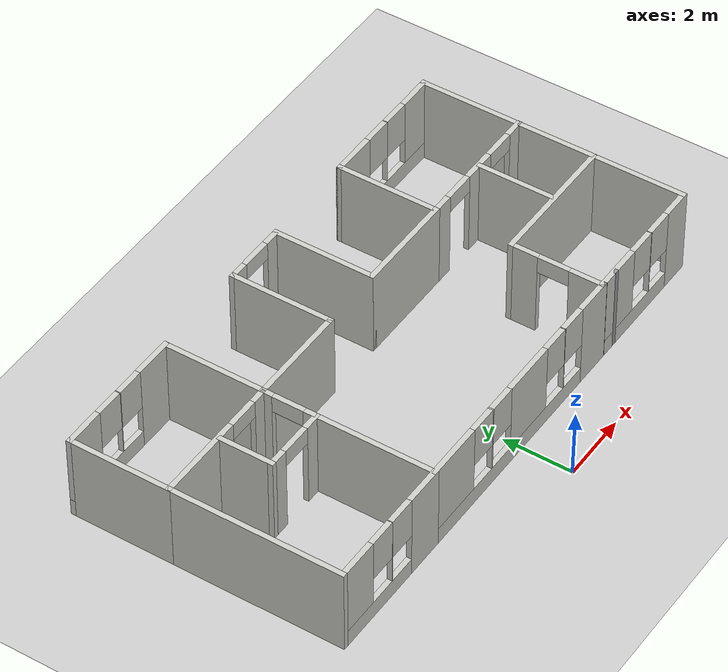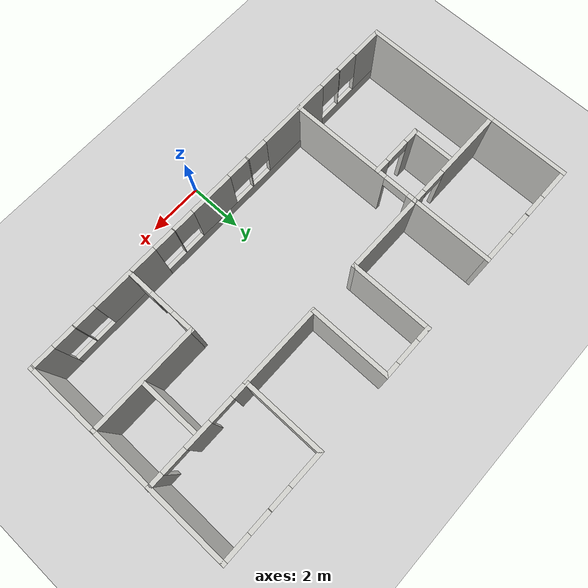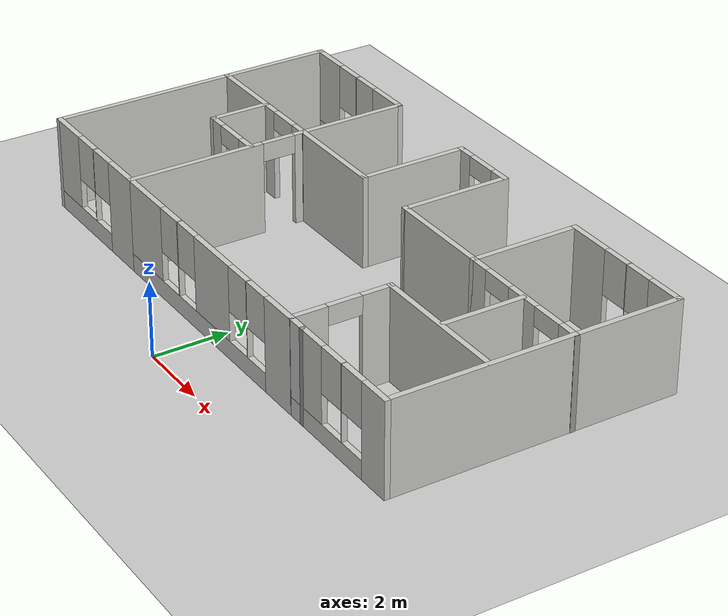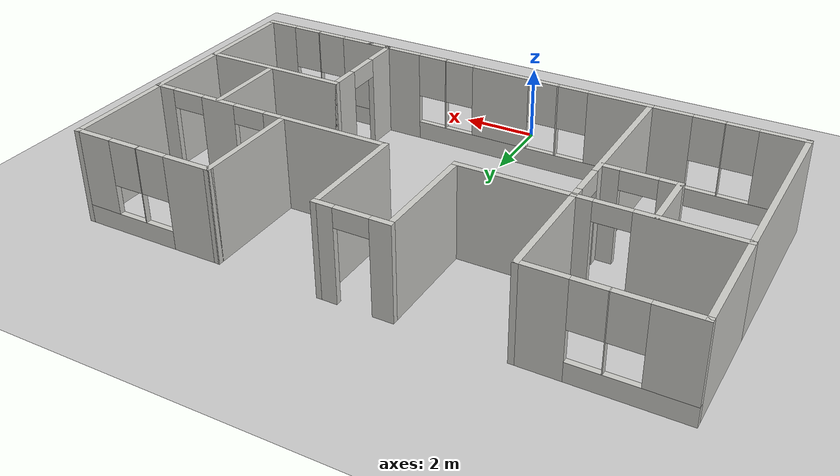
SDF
<sdf version="1.6">
 <world name="default">
  <model name="ground_plane">
   <static>1</static>
   <link name="link">
    <collision name="collision">
     <geometry><plane><normal>0 0 1</normal><size>100 100</size></plane></geometry>
     <surface>
      <contact><collide_bitmask>65535</collide_bitmask></contact>
      <friction><ode><mu>100</mu><mu2>50</mu2></ode></friction>
     </surface>
    </collision>
    <visual name="visual">
     <cast_shadows>0</cast_shadows>
     <geometry><plane><normal>0 0 1</normal><size>100 100</size></plane></geometry>
     <material>
      <script><uri>file://media/materials/scripts/gazebo.material</uri><name>Gazebo/Grey</name></script>
     </material>
    </visual>
   </link>
  </model>
  <model name="MyOffice">
   <pose>-0.034703 5.38022 0 0 -0 0</pose>
   <link name="Wall_0">
    <pose>-0.005 3.85 0 0 -0 3.14159</pose>
    <visual name="Wall_0_Visual_0">
     <pose>-0.723973 0 1.25 0 -0 0</pose>
     <geometry><box><size>0.552053 0.15 2.5</size></box></geometry>
     <material>
      <script><uri>file://media/materials/scripts/gazebo.material</uri><name>Gazebo/CeilingTiled</name></script>
      <ambient>1 1 1 1</ambient>
     </material>
     <meta><layer>0</layer></meta>
    </visual>
    <collision name="Wall_0_Collision_0">
     <geometry><box><size>0.552053 0.15 2.5</size></box></geometry>
     <pose>-0.723973 0 1.25 0 -0 0</pose>
    </collision>
    <visual name="Wall_0_Visual_1">
     <pose>0.726027 0 1.25 0 -0 0</pose>
     <geometry><box><size>0.547947 0.15 2.5</size></box></geometry>
     <material>
      <script><uri>file://media/materials/scripts/gazebo.material</uri><name>Gazebo/CeilingTiled</name></script>
      <ambient>1 1 1 1</ambient>
     </material>
     <meta><layer>0</layer></meta>
    </visual>
    <collision name="Wall_0_Collision_1">
     <geometry><box><size>0.547947 0.15 2.5</size></box></geometry>
     <pose>0.726027 0 1.25 0 -0 0</pose>
    </collision>
    <visual name="Wall_0_Visual_2">
     <pose>0.002053 0 2.25 0 -0 0</pose>
     <geometry><box><size>0.9 0.15 0.5</size></box></geometry>
     <material>
      <script><uri>file://media/materials/scripts/gazebo.material</uri><name>Gazebo/CeilingTiled</name></script>
      <ambient>1 1 1 1</ambient>
     </material>
     <meta><layer>0</layer></meta>
    </visual>
    <collision name="Wall_0_Collision_2">
     <geometry><box><size>0.9 0.15 0.5</size></box></geometry>
     <pose>0.002053 0 2.25 0 -0 0</pose>
    </collision>
   </link>
   <link name="Wall_1">
    <collision name="Wall_1_Collision">
     <geometry><box><size>3 0.15 2.5</size></box></geometry>
     <pose>0 0 1.25 0 -0 0</pose>
    </collision>
    <visual name="Wall_1_Visual">
     <pose>0 0 1.25 0 -0 0</pose>
     <geometry><box><size>3 0.15 2.5</size></box></geometry>
     <material>
      <script><uri>file://media/materials/scripts/gazebo.material</uri><name>Gazebo/CeilingTiled</name></script>
      <ambient>1 1 1 1</ambient>
     </material>
     <meta><layer>0</layer></meta>
    </visual>
    <pose>-0.93 2.425 0 0 0 -1.5708</pose>
   </link>
   <link name="Wall_10">
    <collision name="Wall_10_Collision">
     <geometry><box><size>0.16 0.15 2.5</size></box></geometry>
     <pose>0 0 1.25 0 -0 0</pose>
    </collision>
    <visual name="Wall_10_Visual">
     <pose>0 0 1.25 0 -0 0</pose>
     <geometry><box><size>0.16 0.15 2.5</size></box></geometry>
     <material>
      <script><uri>file://media/materials/scripts/gazebo.material</uri><name>Gazebo/Grey</name></script>
      <ambient>1 1 1 1</ambient>
     </material>
     <meta><layer>0</layer></meta>
    </visual>
    <pose>3.775 -3.85 0 0 -0 0</pose>
   </link>
   <link name="Wall_14">
    <collision name="Wall_14_Collision">
     <geometry><box><size>5 0.15 2.5</size></box></geometry>
     <pose>0 0 1.25 0 -0 0</pose>
    </collision>
    <visual name="Wall_14_Visual">
     <pose>0 0 1.25 0 -0 0</pose>
     <geometry><box><size>5 0.15 2.5</size></box></geometry>
     <material>
      <script><uri>file://media/materials/scripts/gazebo.material</uri><name>Gazebo/CeilingTiled</name></script>
      <ambient>1 1 1 1</ambient>
     </material>
     <meta><layer>0</layer></meta>
    </visual>
    <pose>7.62 -1.425 0 0 0 -1.5708</pose>
   </link>
   <link name="Wall_15">
    <pose>5.695 -3.85 0 0 -0 3.14159</pose>
    <visual name="Wall_15_Visual_0">
     <pose>-1.54591 0 1.25 0 -0 0</pose>
     <geometry><box><size>0.908188 0.15 2.5</size></box></geometry>
     <material>
      <script><uri>file://media/materials/scripts/gazebo.material</uri><name>Gazebo/CeilingTiled</name></script>
      <ambient>1 1 1 1</ambient>
     </material>
     <meta><layer>0</layer></meta>
    </visual>
    <collision name="Wall_15_Collision_0">
     <geometry><box><size>0.908188 0.15 2.5</size></box></geometry>
     <pose>-1.54591 0 1.25 0 -0 0</pose>
    </collision>
    <visual name="Wall_15_Visual_1">
     <pose>0.454094 0 0.25 0 -0 0</pose>
     <geometry><box><size>3.09181 0.15 0.5</size></box></geometry>
     <material>
      <script><uri>file://media/materials/scripts/gazebo.material</uri><name>Gazebo/CeilingTiled</name></script>
      <ambient>1 1 1 1</ambient>
     </material>
     <meta><layer>0</layer></meta>
    </visual>
    <collision name="Wall_15_Collision_1">
     <geometry><box><size>3.09181 0.15 0.5</size></box></geometry>
     <pose>0.454094 0 0.25 0 -0 0</pose>
    </collision>
    <visual name="Wall_15_Visual_2">
     <pose>-0.280795 0 1.5 0 -0 0</pose>
     <geometry><box><size>0.022033 0.15 2</size></box></geometry>
     <material>
      <script><uri>file://media/materials/scripts/gazebo.material</uri><name>Gazebo/CeilingTiled</name></script>
      <ambient>1 1 1 1</ambient>
     </material>
     <meta><layer>0</layer></meta>
    </visual>
    <collision name="Wall_15_Collision_2">
     <geometry><box><size>0.022033 0.15 2</size></box></geometry>
     <pose>-0.280795 0 1.5 0 -0 0</pose>
    </collision>
    <visual name="Wall_15_Visual_3">
     <pose>1.26511 0 1.5 0 -0 0</pose>
     <geometry><box><size>1.46978 0.15 2</size></box></geometry>
     <material>
      <script><uri>file://media/materials/scripts/gazebo.material</uri><name>Gazebo/CeilingTiled</name></script>
      <ambient>1 1 1 1</ambient>
     </material>
     <meta><layer>0</layer></meta>
    </visual>
    <collision name="Wall_15_Collision_3">
     <geometry><box><size>1.46978 0.15 2</size></box></geometry>
     <pose>1.26511 0 1.5 0 -0 0</pose>
    </collision>
    <visual name="Wall_15_Visual_4">
     <pose>-0.691812 0 1.9 0 -0 0</pose>
     <geometry><box><size>0.8 0.15 1.2</size></box></geometry>
     <material>
      <script><uri>file://media/materials/scripts/gazebo.material</uri><name>Gazebo/CeilingTiled</name></script>
      <ambient>1 1 1 1</ambient>
     </material>
     <meta><layer>0</layer></meta>
    </visual>
    <collision name="Wall_15_Collision_4">
     <geometry><box><size>0.8 0.15 1.2</size></box></geometry>
     <pose>-0.691812 0 1.9 0 -0 0</pose>
    </collision>
    <visual name="Wall_15_Visual_5">
     <pose>0.130221 0 1.9 0 -0 0</pose>
     <geometry><box><size>0.8 0.15 1.2</size></box></geometry>
     <material>
      <script><uri>file://media/materials/scripts/gazebo.material</uri><name>Gazebo/CeilingTiled</name></script>
      <ambient>1 1 1 1</ambient>
     </material>
     <meta><layer>0</layer></meta>
    </visual>
    <collision name="Wall_15_Collision_5">
     <geometry><box><size>0.8 0.15 1.2</size></box></geometry>
     <pose>0.130221 0 1.9 0 -0 0</pose>
    </collision>
   </link>
   <link name="Wall_17">
    <collision name="Wall_17_Collision">
     <geometry><box><size>3 0.15 2.5</size></box></geometry>
     <pose>0 0 1.25 0 -0 0</pose>
    </collision>
    <visual name="Wall_17_Visual">
     <pose>0 0 1.25 0 -0 0</pose>
     <geometry><box><size>3 0.15 2.5</size></box></geometry>
     <material>
      <script><uri>file://media/materials/scripts/gazebo.material</uri><name>Gazebo/CeilingTiled</name></script>
      <ambient>1 1 1 1</ambient>
     </material>
     <meta><layer>0</layer></meta>
    </visual>
    <pose>3.77 2.425 0 0 -0 1.5708</pose>
   </link>
   <link name="Wall_18">
    <pose>5.695 3.85 0 0 -0 0</pose>
    <visual name="Wall_18_Visual_0">
     <pose>-1.34382 0 1.25 0 -0 0</pose>
     <geometry><box><size>1.31237 0.15 2.5</size></box></geometry>
     <material>
      <script><uri>file://media/materials/scripts/gazebo.material</uri><name>Gazebo/CeilingTiled</name></script>
      <ambient>1 1 1 1</ambient>
     </material>
     <meta><layer>0</layer></meta>
    </visual>
    <collision name="Wall_18_Collision_0">
     <geometry><box><size>1.31237 0.15 2.5</size></box></geometry>
     <pose>-1.34382 0 1.25 0 -0 0</pose>
    </collision>
    <visual name="Wall_18_Visual_1">
     <pose>0.656184 0 0.25 0 -0 0</pose>
     <geometry><box><size>2.68763 0.15 0.5</size></box></geometry>
     <material>
      <script><uri>file://media/materials/scripts/gazebo.material</uri><name>Gazebo/CeilingTiled</name></script>
      <ambient>1 1 1 1</ambient>
     </material>
     <meta><layer>0</layer></meta>
    </visual>
    <collision name="Wall_18_Collision_1">
     <geometry><box><size>2.68763 0.15 0.5</size></box></geometry>
     <pose>0.656184 0 0.25 0 -0 0</pose>
    </collision>
    <visual name="Wall_18_Visual_2">
     <pose>0.123384 0 1.5 0 -0 0</pose>
     <geometry><box><size>0.022033 0.15 2</size></box></geometry>
     <material>
      <script><uri>file://media/materials/scripts/gazebo.material</uri><name>Gazebo/CeilingTiled</name></script>
      <ambient>1 1 1 1</ambient>
     </material>
     <meta><layer>0</layer></meta>
    </visual>
    <collision name="Wall_18_Collision_2">
     <geometry><box><size>0.022033 0.15 2</size></box></geometry>
     <pose>0.123384 0 1.5 0 -0 0</pose>
    </collision>
    <visual name="Wall_18_Visual_3">
     <pose>1.4672 0 1.5 0 -0 0</pose>
     <geometry><box><size>1.0656 0.15 2</size></box></geometry>
     <material>
      <script><uri>file://media/materials/scripts/gazebo.material</uri><name>Gazebo/CeilingTiled</name></script>
      <ambient>1 1 1 1</ambient>
     </material>
     <meta><layer>0</layer></meta>
    </visual>
    <collision name="Wall_18_Collision_3">
     <geometry><box><size>1.0656 0.15 2</size></box></geometry>
     <pose>1.4672 0 1.5 0 -0 0</pose>
    </collision>
    <visual name="Wall_18_Visual_4">
     <pose>-0.287632 0 1.9 0 -0 0</pose>
     <geometry><box><size>0.8 0.15 1.2</size></box></geometry>
     <material>
      <script><uri>file://media/materials/scripts/gazebo.material</uri><name>Gazebo/CeilingTiled</name></script>
      <ambient>1 1 1 1</ambient>
     </material>
     <meta><layer>0</layer></meta>
    </visual>
    <collision name="Wall_18_Collision_4">
     <geometry><box><size>0.8 0.15 1.2</size></box></geometry>
     <pose>-0.287632 0 1.9 0 -0 0</pose>
    </collision>
    <visual name="Wall_18_Visual_5">
     <pose>0.534401 0 1.9 0 -0 0</pose>
     <geometry><box><size>0.8 0.15 1.2</size></box></geometry>
     <material>
      <script><uri>file://media/materials/scripts/gazebo.material</uri><name>Gazebo/CeilingTiled</name></script>
      <ambient>1 1 1 1</ambient>
     </material>
     <meta><layer>0</layer></meta>
    </visual>
    <collision name="Wall_18_Collision_5">
     <geometry><box><size>0.8 0.15 1.2</size></box></geometry>
     <pose>0.534401 0 1.9 0 -0 0</pose>
    </collision>
   </link>
   <link name="Wall_19">
    <collision name="Wall_19_Collision">
     <geometry><box><size>3 0.15 2.5</size></box></geometry>
     <pose>0 0 1.25 0 -0 0</pose>
    </collision>
    <visual name="Wall_19_Visual">
     <pose>0 0 1.25 0 -0 0</pose>
     <geometry><box><size>3 0.15 2.5</size></box></geometry>
     <material>
      <script><uri>file://media/materials/scripts/gazebo.material</uri><name>Gazebo/CeilingTiled</name></script>
      <ambient>1 1 1 1</ambient>
     </material>
     <meta><layer>0</layer></meta>
    </visual>
    <pose>7.62 2.425 0 0 0 -1.5708</pose>
   </link>
   <link name="Wall_2">
    <collision name="Wall_2_Collision">
     <geometry><box><size>3 0.15 2.5</size></box></geometry>
     <pose>0 0 1.25 0 -0 0</pose>
    </collision>
    <visual name="Wall_2_Visual">
     <pose>0 0 1.25 0 -0 0</pose>
     <geometry><box><size>3 0.15 2.5</size></box></geometry>
     <material>
      <script><uri>file://media/materials/scripts/gazebo.material</uri><name>Gazebo/CeilingTiled</name></script>
      <ambient>1 1 1 1</ambient>
     </material>
     <meta><layer>0</layer></meta>
    </visual>
    <pose>-2.355 1 0 0 -0 3.14159</pose>
   </link>
   <link name="Wall_21">
    <collision name="Wall_21_Collision">
     <geometry><box><size>4 0.15 2.5</size></box></geometry>
     <pose>0 0 1.25 0 -0 0</pose>
    </collision>
    <visual name="Wall_21_Visual">
     <pose>0 0 1.25 0 -0 0</pose>
     <geometry><box><size>4 0.15 2.5</size></box></geometry>
     <material>
      <script><uri>file://media/materials/scripts/gazebo.material</uri><name>Gazebo/CeilingTiled</name></script>
      <ambient>1 1 1 1</ambient>
     </material>
     <meta><layer>0</layer></meta>
    </visual>
    <pose>5.67839 -1.23961 0 0 -0 0</pose>
   </link>
   <link name="Wall_23">
    <pose>-0.005 -3.85 0 0 -0 3.14159</pose>
    <visual name="Wall_23_Visual_0">
     <pose>-3.29206 0 1.25 0 -0 0</pose>
     <geometry><box><size>1.11588 0.15 2.5</size></box></geometry>
     <material>
      <script><uri>file://media/materials/scripts/gazebo.material</uri><name>Gazebo/CeilingTiled</name></script>
      <ambient>1 1 1 1</ambient>
     </material>
     <meta><layer>0</layer></meta>
    </visual>
    <collision name="Wall_23_Collision_0">
     <geometry><box><size>1.11588 0.15 2.5</size></box></geometry>
     <pose>-3.29206 0 1.25 0 -0 0</pose>
    </collision>
    <visual name="Wall_23_Visual_1">
     <pose>0.557941 0 0.25 0 -0 0</pose>
     <geometry><box><size>6.58412 0.15 0.5</size></box></geometry>
     <material>
      <script><uri>file://media/materials/scripts/gazebo.material</uri><name>Gazebo/CeilingTiled</name></script>
      <ambient>1 1 1 1</ambient>
     </material>
     <meta><layer>0</layer></meta>
    </visual>
    <collision name="Wall_23_Collision_1">
     <geometry><box><size>6.58412 0.15 0.5</size></box></geometry>
     <pose>0.557941 0 0.25 0 -0 0</pose>
    </collision>
    <visual name="Wall_23_Visual_2">
     <pose>-1.9231 0 1.5 0 -0 0</pose>
     <geometry><box><size>0.022033 0.15 2</size></box></geometry>
     <material>
      <script><uri>file://media/materials/scripts/gazebo.material</uri><name>Gazebo/CeilingTiled</name></script>
      <ambient>1 1 1 1</ambient>
     </material>
     <meta><layer>0</layer></meta>
    </visual>
    <collision name="Wall_23_Collision_2">
     <geometry><box><size>0.022033 0.15 2</size></box></geometry>
     <pose>-1.9231 0 1.5 0 -0 0</pose>
    </collision>
    <visual name="Wall_23_Visual_3">
     <pose>-0.30527 0 1.5 0 -0 0</pose>
     <geometry><box><size>1.61363 0.15 2</size></box></geometry>
     <material>
      <script><uri>file://media/materials/scripts/gazebo.material</uri><name>Gazebo/CeilingTiled</name></script>
      <ambient>1 1 1 1</ambient>
     </material>
     <meta><layer>0</layer></meta>
    </visual>
    <collision name="Wall_23_Collision_3">
     <geometry><box><size>1.61363 0.15 2</size></box></geometry>
     <pose>-0.30527 0 1.5 0 -0 0</pose>
    </collision>
    <visual name="Wall_23_Visual_4">
     <pose>1.32131 0 1.5 0 -0 0</pose>
     <geometry><box><size>0.039523 0.15 2</size></box></geometry>
     <material>
      <script><uri>file://media/materials/scripts/gazebo.material</uri><name>Gazebo/CeilingTiled</name></script>
      <ambient>1 1 1 1</ambient>
     </material>
     <meta><layer>0</layer></meta>
    </visual>
    <collision name="Wall_23_Collision_4">
     <geometry><box><size>0.039523 0.15 2</size></box></geometry>
     <pose>1.32131 0 1.5 0 -0 0</pose>
    </collision>
    <visual name="Wall_23_Visual_5">
     <pose>2.99553 0 1.5 0 -0 0</pose>
     <geometry><box><size>1.70893 0.15 2</size></box></geometry>
     <material>
      <script><uri>file://media/materials/scripts/gazebo.material</uri><name>Gazebo/CeilingTiled</name></script>
      <ambient>1 1 1 1</ambient>
     </material>
     <meta><layer>0</layer></meta>
    </visual>
    <collision name="Wall_23_Collision_5">
     <geometry><box><size>1.70893 0.15 2</size></box></geometry>
     <pose>2.99553 0 1.5 0 -0 0</pose>
    </collision>
    <visual name="Wall_23_Visual_6">
     <pose>-2.33412 0 1.9 0 -0 0</pose>
     <geometry><box><size>0.8 0.15 1.2</size></box></geometry>
     <material>
      <script><uri>file://media/materials/scripts/gazebo.material</uri><name>Gazebo/CeilingTiled</name></script>
      <ambient>1 1 1 1</ambient>
     </material>
     <meta><layer>0</layer></meta>
    </visual>
    <collision name="Wall_23_Collision_6">
     <geometry><box><size>0.8 0.15 1.2</size></box></geometry>
     <pose>-2.33412 0 1.9 0 -0 0</pose>
    </collision>
    <visual name="Wall_23_Visual_7">
     <pose>-1.51208 0 1.9 0 -0 0</pose>
     <geometry><box><size>0.8 0.15 1.2</size></box></geometry>
     <material>
      <script><uri>file://media/materials/scripts/gazebo.material</uri><name>Gazebo/CeilingTiled</name></script>
      <ambient>1 1 1 1</ambient>
     </material>
     <meta><layer>0</layer></meta>
    </visual>
    <collision name="Wall_23_Collision_7">
     <geometry><box><size>0.8 0.15 1.2</size></box></geometry>
     <pose>-1.51208 0 1.9 0 -0 0</pose>
    </collision>
    <visual name="Wall_23_Visual_8">
     <pose>0.901544 0 1.9 0 -0 0</pose>
     <geometry><box><size>0.8 0.15 1.2</size></box></geometry>
     <material>
      <script><uri>file://media/materials/scripts/gazebo.material</uri><name>Gazebo/CeilingTiled</name></script>
      <ambient>1 1 1 1</ambient>
     </material>
     <meta><layer>0</layer></meta>
    </visual>
    <collision name="Wall_23_Collision_8">
     <geometry><box><size>0.8 0.15 1.2</size></box></geometry>
     <pose>0.901544 0 1.9 0 -0 0</pose>
    </collision>
    <visual name="Wall_23_Visual_9">
     <pose>1.74107 0 1.9 0 -0 0</pose>
     <geometry><box><size>0.8 0.15 1.2</size></box></geometry>
     <material>
      <script><uri>file://media/materials/scripts/gazebo.material</uri><name>Gazebo/CeilingTiled</name></script>
      <ambient>1 1 1 1</ambient>
     </material>
     <meta><layer>0</layer></meta>
    </visual>
    <collision name="Wall_23_Collision_9">
     <geometry><box><size>0.8 0.15 1.2</size></box></geometry>
     <pose>1.74107 0 1.9 0 -0 0</pose>
    </collision>
   </link>
   <link name="Wall_24">
    <pose>-5.705 -3.85 0 0 -0 3.14159</pose>
    <visual name="Wall_24_Visual_0">
     <pose>-1.42172 0 1.25 0 -0 0</pose>
     <geometry><box><size>1.15657 0.15 2.5</size></box></geometry>
     <material>
      <script><uri>file://media/materials/scripts/gazebo.material</uri><name>Gazebo/CeilingTiled</name></script>
      <ambient>0.760784 0.662745 0.627451 1</ambient>
     </material>
     <meta><layer>0</layer></meta>
    </visual>
    <collision name="Wall_24_Collision_0">
     <geometry><box><size>1.15657 0.15 2.5</size></box></geometry>
     <pose>-1.42172 0 1.25 0 -0 0</pose>
    </collision>
    <visual name="Wall_24_Visual_1">
     <pose>0.578285 0 0.25 0 -0 0</pose>
     <geometry><box><size>2.84343 0.15 0.5</size></box></geometry>
     <material>
      <script><uri>file://media/materials/scripts/gazebo.material</uri><name>Gazebo/CeilingTiled</name></script>
      <ambient>0.760784 0.662745 0.627451 1</ambient>
     </material>
     <meta><layer>0</layer></meta>
    </visual>
    <collision name="Wall_24_Collision_1">
     <geometry><box><size>2.84343 0.15 0.5</size></box></geometry>
     <pose>0.578285 0 0.25 0 -0 0</pose>
    </collision>
    <visual name="Wall_24_Visual_2">
     <pose>-0.032413 0 1.5 0 -0 0</pose>
     <geometry><box><size>0.022033 0.15 2</size></box></geometry>
     <material>
      <script><uri>file://media/materials/scripts/gazebo.material</uri><name>Gazebo/CeilingTiled</name></script>
      <ambient>0.760784 0.662745 0.627451 1</ambient>
     </material>
     <meta><layer>0</layer></meta>
    </visual>
    <collision name="Wall_24_Collision_2">
     <geometry><box><size>0.022033 0.15 2</size></box></geometry>
     <pose>-0.032413 0 1.5 0 -0 0</pose>
    </collision>
    <visual name="Wall_24_Visual_3">
     <pose>1.3893 0 1.5 0 -0 0</pose>
     <geometry><box><size>1.2214 0.15 2</size></box></geometry>
     <material>
      <script><uri>file://media/materials/scripts/gazebo.material</uri><name>Gazebo/CeilingTiled</name></script>
      <ambient>0.760784 0.662745 0.627451 1</ambient>
     </material>
     <meta><layer>0</layer></meta>
    </visual>
    <collision name="Wall_24_Collision_3">
     <geometry><box><size>1.2214 0.15 2</size></box></geometry>
     <pose>1.3893 0 1.5 0 -0 0</pose>
    </collision>
    <visual name="Wall_24_Visual_4">
     <pose>-0.44343 0 1.9 0 -0 0</pose>
     <geometry><box><size>0.8 0.15 1.2</size></box></geometry>
     <material>
      <script><uri>file://media/materials/scripts/gazebo.material</uri><name>Gazebo/CeilingTiled</name></script>
      <ambient>0.760784 0.662745 0.627451 1</ambient>
     </material>
     <meta><layer>0</layer></meta>
    </visual>
    <collision name="Wall_24_Collision_4">
     <geometry><box><size>0.8 0.15 1.2</size></box></geometry>
     <pose>-0.44343 0 1.9 0 -0 0</pose>
    </collision>
    <visual name="Wall_24_Visual_5">
     <pose>0.378603 0 1.9 0 -0 0</pose>
     <geometry><box><size>0.8 0.15 1.2</size></box></geometry>
     <material>
      <script><uri>file://media/materials/scripts/gazebo.material</uri><name>Gazebo/CeilingTiled</name></script>
      <ambient>0.760784 0.662745 0.627451 1</ambient>
     </material>
     <meta><layer>0</layer></meta>
    </visual>
    <collision name="Wall_24_Collision_5">
     <geometry><box><size>0.8 0.15 1.2</size></box></geometry>
     <pose>0.378603 0 1.9 0 -0 0</pose>
    </collision>
   </link>
   <link name="Wall_3">
    <pose>-3.78 -1.425 0 0 0 -1.5708</pose>
    <visual name="Wall_3_Visual_0">
     <pose>-2.31536 0 1.25 0 -0 0</pose>
     <geometry><box><size>0.36928 0.15 2.5</size></box></geometry>
     <material>
      <script><uri>file://media/materials/scripts/gazebo.material</uri><name>Gazebo/CeilingTiled</name></script>
      <ambient>0.760784 0.662745 0.627451 1</ambient>
     </material>
     <meta><layer>0</layer></meta>
    </visual>
    <collision name="Wall_3_Collision_0">
     <geometry><box><size>0.36928 0.15 2.5</size></box></geometry>
     <pose>-2.31536 0 1.25 0 -0 0</pose>
    </collision>
    <visual name="Wall_3_Visual_1">
     <pose>0.63464 0 1.25 0 -0 0</pose>
     <geometry><box><size>3.73072 0.15 2.5</size></box></geometry>
     <material>
      <script><uri>file://media/materials/scripts/gazebo.material</uri><name>Gazebo/CeilingTiled</name></script>
      <ambient>0.760784 0.662745 0.627451 1</ambient>
     </material>
     <meta><layer>0</layer></meta>
    </visual>
    <collision name="Wall_3_Collision_1">
     <geometry><box><size>3.73072 0.15 2.5</size></box></geometry>
     <pose>0.63464 0 1.25 0 -0 0</pose>
    </collision>
    <visual name="Wall_3_Visual_2">
     <pose>-1.68072 0 2.25 0 -0 0</pose>
     <geometry><box><size>0.9 0.15 0.5</size></box></geometry>
     <material>
      <script><uri>file://media/materials/scripts/gazebo.material</uri><name>Gazebo/CeilingTiled</name></script>
      <ambient>0.760784 0.662745 0.627451 1</ambient>
     </material>
     <meta><layer>0</layer></meta>
    </visual>
    <collision name="Wall_3_Collision_2">
     <geometry><box><size>0.9 0.15 0.5</size></box></geometry>
     <pose>-1.68072 0 2.25 0 -0 0</pose>
    </collision>
   </link>
   <link name="Wall_32">
    <collision name="Wall_32_Collision">
     <geometry><box><size>3 0.15 2.5</size></box></geometry>
     <pose>0 0 1.25 0 -0 0</pose>
    </collision>
    <visual name="Wall_32_Visual">
     <pose>0 0 1.25 0 -0 0</pose>
     <geometry><box><size>3 0.15 2.5</size></box></geometry>
     <material>
      <script><uri>file://media/materials/scripts/gazebo.material</uri><name>Gazebo/CeilingTiled</name></script>
      <ambient>1 1 1 1</ambient>
     </material>
     <meta><layer>0</layer></meta>
    </visual>
    <pose>-3.78 2.425 0 0 -0 1.5708</pose>
   </link>
   <link name="Wall_33">
    <pose>-5.705 3.85 0 0 -0 3.14159</pose>
    <visual name="Wall_33_Visual_0">
     <pose>-1.39548 0 1.25 0 -0 0</pose>
     <geometry><box><size>1.20904 0.15 2.5</size></box></geometry>
     <material>
      <script><uri>file://media/materials/scripts/gazebo.material</uri><name>Gazebo/CeilingTiled</name></script>
      <ambient>1 1 1 1</ambient>
     </material>
     <meta><layer>0</layer></meta>
    </visual>
    <collision name="Wall_33_Collision_0">
     <geometry><box><size>1.20904 0.15 2.5</size></box></geometry>
     <pose>-1.39548 0 1.25 0 -0 0</pose>
    </collision>
    <visual name="Wall_33_Visual_1">
     <pose>0.60452 0 0.25 0 -0 0</pose>
     <geometry><box><size>2.79096 0.15 0.5</size></box></geometry>
     <material>
      <script><uri>file://media/materials/scripts/gazebo.material</uri><name>Gazebo/CeilingTiled</name></script>
      <ambient>1 1 1 1</ambient>
     </material>
     <meta><layer>0</layer></meta>
    </visual>
    <collision name="Wall_33_Collision_1">
     <geometry><box><size>2.79096 0.15 0.5</size></box></geometry>
     <pose>0.60452 0 0.25 0 -0 0</pose>
    </collision>
    <visual name="Wall_33_Visual_2">
     <pose>0.020057 0 1.5 0 -0 0</pose>
     <geometry><box><size>0.022033 0.15 2</size></box></geometry>
     <material>
      <script><uri>file://media/materials/scripts/gazebo.material</uri><name>Gazebo/CeilingTiled</name></script>
      <ambient>1 1 1 1</ambient>
     </material>
     <meta><layer>0</layer></meta>
    </visual>
    <collision name="Wall_33_Collision_2">
     <geometry><box><size>0.022033 0.15 2</size></box></geometry>
     <pose>0.020057 0 1.5 0 -0 0</pose>
    </collision>
    <visual name="Wall_33_Visual_3">
     <pose>1.41554 0 1.5 0 -0 0</pose>
     <geometry><box><size>1.16893 0.15 2</size></box></geometry>
     <material>
      <script><uri>file://media/materials/scripts/gazebo.material</uri><name>Gazebo/CeilingTiled</name></script>
      <ambient>1 1 1 1</ambient>
     </material>
     <meta><layer>0</layer></meta>
    </visual>
    <collision name="Wall_33_Collision_3">
     <geometry><box><size>1.16893 0.15 2</size></box></geometry>
     <pose>1.41554 0 1.5 0 -0 0</pose>
    </collision>
    <visual name="Wall_33_Visual_4">
     <pose>-0.39096 0 1.9 0 -0 0</pose>
     <geometry><box><size>0.8 0.15 1.2</size></box></geometry>
     <material>
      <script><uri>file://media/materials/scripts/gazebo.material</uri><name>Gazebo/CeilingTiled</name></script>
      <ambient>1 1 1 1</ambient>
     </material>
     <meta><layer>0</layer></meta>
    </visual>
    <collision name="Wall_33_Collision_4">
     <geometry><box><size>0.8 0.15 1.2</size></box></geometry>
     <pose>-0.39096 0 1.9 0 -0 0</pose>
    </collision>
    <visual name="Wall_33_Visual_5">
     <pose>0.431073 0 1.9 0 -0 0</pose>
     <geometry><box><size>0.8 0.15 1.2</size></box></geometry>
     <material>
      <script><uri>file://media/materials/scripts/gazebo.material</uri><name>Gazebo/CeilingTiled</name></script>
      <ambient>1 1 1 1</ambient>
     </material>
     <meta><layer>0</layer></meta>
    </visual>
    <collision name="Wall_33_Collision_5">
     <geometry><box><size>0.8 0.15 1.2</size></box></geometry>
     <pose>0.431073 0 1.9 0 -0 0</pose>
    </collision>
   </link>
   <link name="Wall_34">
    <collision name="Wall_34_Collision">
     <geometry><box><size>3 0.15 2.5</size></box></geometry>
     <pose>0 0 1.25 0 -0 0</pose>
    </collision>
    <visual name="Wall_34_Visual">
     <pose>0 0 1.25 0 -0 0</pose>
     <geometry><box><size>3 0.15 2.5</size></box></geometry>
     <material>
      <script><uri>file://media/materials/scripts/gazebo.material</uri><name>Gazebo/CeilingTiled</name></script>
      <ambient>1 1 1 1</ambient>
     </material>
     <meta><layer>0</layer></meta>
    </visual>
    <pose>-7.63 2.425 0 0 0 -1.5708</pose>
   </link>
   <link name="Wall_35">
    <pose>-5.705 1 0 0 -0 0</pose>
    <visual name="Wall_35_Visual_0">
     <pose>-0.711654 0 1.25 0 -0 0</pose>
     <geometry><box><size>2.57669 0.15 2.5</size></box></geometry>
     <material>
      <script><uri>file://media/materials/scripts/gazebo.material</uri><name>Gazebo/CeilingTiled</name></script>
      <ambient>0.760784 0.662745 0.627451 1</ambient>
     </material>
     <meta><layer>0</layer></meta>
    </visual>
    <collision name="Wall_35_Collision_0">
     <geometry><box><size>2.57669 0.15 2.5</size></box></geometry>
     <pose>-0.711654 0 1.25 0 -0 0</pose>
    </collision>
    <visual name="Wall_35_Visual_1">
     <pose>1.73835 0 1.25 0 -0 0</pose>
     <geometry><box><size>0.523307 0.15 2.5</size></box></geometry>
     <material>
      <script><uri>file://media/materials/scripts/gazebo.material</uri><name>Gazebo/CeilingTiled</name></script>
      <ambient>0.760784 0.662745 0.627451 1</ambient>
     </material>
     <meta><layer>0</layer></meta>
    </visual>
    <collision name="Wall_35_Collision_1">
     <geometry><box><size>0.523307 0.15 2.5</size></box></geometry>
     <pose>1.73835 0 1.25 0 -0 0</pose>
    </collision>
    <visual name="Wall_35_Visual_2">
     <pose>1.02669 0 2.25 0 -0 0</pose>
     <geometry><box><size>0.9 0.15 0.5</size></box></geometry>
     <material>
      <script><uri>file://media/materials/scripts/gazebo.material</uri><name>Gazebo/CeilingTiled</name></script>
      <ambient>0.760784 0.662745 0.627451 1</ambient>
     </material>
     <meta><layer>0</layer></meta>
    </visual>
    <collision name="Wall_35_Collision_2">
     <geometry><box><size>0.9 0.15 0.5</size></box></geometry>
     <pose>1.02669 0 2.25 0 -0 0</pose>
    </collision>
   </link>
   <link name="Wall_36">
    <collision name="Wall_36_Collision">
     <geometry><box><size>0.16 0.15 2.5</size></box></geometry>
     <pose>0 0 1.25 0 -0 0</pose>
    </collision>
    <visual name="Wall_36_Visual">
     <pose>0 0 1.25 0 -0 0</pose>
     <geometry><box><size>0.16 0.15 2.5</size></box></geometry>
     <material>
      <script><uri>file://media/materials/scripts/gazebo.material</uri><name>Gazebo/Grey</name></script>
      <ambient>1 1 1 1</ambient>
     </material>
     <meta><layer>0</layer></meta>
    </visual>
    <pose>-3.775 1 0 0 -0 0</pose>
   </link>
   <link name="Wall_38">
    <pose>-4.70983 -0.522516 0 0 -0 3.14159</pose>
    <visual name="Wall_38_Visual_0">
     <pose>-0.725551 0 1.25 0 -0 0</pose>
     <geometry><box><size>0.548898 0.15 2.5</size></box></geometry>
     <material>
      <script><uri>file://media/materials/scripts/gazebo.material</uri><name>Gazebo/CeilingTiled</name></script>
      <ambient>1 1 1 1</ambient>
     </material>
     <meta><layer>0</layer></meta>
    </visual>
    <collision name="Wall_38_Collision_0">
     <geometry><box><size>0.548898 0.15 2.5</size></box></geometry>
     <pose>-0.725551 0 1.25 0 -0 0</pose>
    </collision>
    <visual name="Wall_38_Visual_1">
     <pose>0.724449 0 1.25 0 -0 0</pose>
     <geometry><box><size>0.551102 0.15 2.5</size></box></geometry>
     <material>
      <script><uri>file://media/materials/scripts/gazebo.material</uri><name>Gazebo/CeilingTiled</name></script>
      <ambient>1 1 1 1</ambient>
     </material>
     <meta><layer>0</layer></meta>
    </visual>
    <collision name="Wall_38_Collision_1">
     <geometry><box><size>0.551102 0.15 2.5</size></box></geometry>
     <pose>0.724449 0 1.25 0 -0 0</pose>
    </collision>
    <visual name="Wall_38_Visual_2">
     <pose>-0.001102 0 2.25 0 -0 0</pose>
     <geometry><box><size>0.9 0.15 0.5</size></box></geometry>
     <material>
      <script><uri>file://media/materials/scripts/gazebo.material</uri><name>Gazebo/CeilingTiled</name></script>
      <ambient>1 1 1 1</ambient>
     </material>
     <meta><layer>0</layer></meta>
    </visual>
    <collision name="Wall_38_Collision_2">
     <geometry><box><size>0.9 0.15 0.5</size></box></geometry>
     <pose>-0.001102 0 2.25 0 -0 0</pose>
    </collision>
   </link>
   <link name="Wall_39">
    <collision name="Wall_39_Collision">
     <geometry><box><size>1.65 0.15 2.5</size></box></geometry>
     <pose>0 0 1.25 0 -0 0</pose>
    </collision>
    <visual name="Wall_39_Visual">
     <pose>0 0 1.25 0 -0 0</pose>
     <geometry><box><size>1.65 0.15 2.5</size></box></geometry>
     <material>
      <script><uri>file://media/materials/scripts/gazebo.material</uri><name>Gazebo/CeilingTiled</name></script>
      <ambient>1 1 1 1</ambient>
     </material>
     <meta><layer>0</layer></meta>
    </visual>
    <pose>-5.63483 0.227484 0 0 -0 1.5708</pose>
   </link>
   <link name="Wall_41">
    <collision name="Wall_41_Collision">
     <geometry><box><size>5 0.15 2.5</size></box></geometry>
     <pose>0 0 1.25 0 -0 0</pose>
    </collision>
    <visual name="Wall_41_Visual">
     <pose>0 0 1.25 0 -0 0</pose>
     <geometry><box><size>5 0.15 2.5</size></box></geometry>
     <material>
      <script><uri>file://media/materials/scripts/gazebo.material</uri><name>Gazebo/CeilingTiled</name></script>
      <ambient>0.760784 0.662745 0.627451 1</ambient>
     </material>
     <meta><layer>0</layer></meta>
    </visual>
    <pose>-7.63 -1.425 0 0 0 -1.5708</pose>
   </link>
   <link name="Wall_43">
    <pose>5.695 1 0 0 -0 0</pose>
    <visual name="Wall_43_Visual_0">
     <pose>-1.68173 0 1.25 0 -0 0</pose>
     <geometry><box><size>0.636535 0.15 2.5</size></box></geometry>
     <material>
      <script><uri>file://media/materials/scripts/gazebo.material</uri><name>Gazebo/CeilingTiled</name></script>
      <ambient>1 1 1 1</ambient>
     </material>
     <meta><layer>0</layer></meta>
    </visual>
    <collision name="Wall_43_Collision_0">
     <geometry><box><size>0.636535 0.15 2.5</size></box></geometry>
     <pose>-1.68173 0 1.25 0 -0 0</pose>
    </collision>
    <visual name="Wall_43_Visual_1">
     <pose>0.029478 0 1.25 0 -0 0</pose>
     <geometry><box><size>0.985885 0.15 2.5</size></box></geometry>
     <material>
      <script><uri>file://media/materials/scripts/gazebo.material</uri><name>Gazebo/CeilingTiled</name></script>
      <ambient>1 1 1 1</ambient>
     </material>
     <meta><layer>0</layer></meta>
    </visual>
    <collision name="Wall_43_Collision_1">
     <geometry><box><size>0.985885 0.15 2.5</size></box></geometry>
     <pose>0.029478 0 1.25 0 -0 0</pose>
    </collision>
    <visual name="Wall_43_Visual_2">
     <pose>1.71121 0 1.25 0 -0 0</pose>
     <geometry><box><size>0.57758 0.15 2.5</size></box></geometry>
     <material>
      <script><uri>file://media/materials/scripts/gazebo.material</uri><name>Gazebo/CeilingTiled</name></script>
      <ambient>1 1 1 1</ambient>
     </material>
     <meta><layer>0</layer></meta>
    </visual>
    <collision name="Wall_43_Collision_2">
     <geometry><box><size>0.57758 0.15 2.5</size></box></geometry>
     <pose>1.71121 0 1.25 0 -0 0</pose>
    </collision>
    <visual name="Wall_43_Visual_3">
     <pose>-0.913465 0 2.25 0 -0 0</pose>
     <geometry><box><size>0.9 0.15 0.5</size></box></geometry>
     <material>
      <script><uri>file://media/materials/scripts/gazebo.material</uri><name>Gazebo/CeilingTiled</name></script>
      <ambient>1 1 1 1</ambient>
     </material>
     <meta><layer>0</layer></meta>
    </visual>
    <collision name="Wall_43_Collision_3">
     <geometry><box><size>0.9 0.15 0.5</size></box></geometry>
     <pose>-0.913465 0 2.25 0 -0 0</pose>
    </collision>
    <visual name="Wall_43_Visual_4">
     <pose>0.97242 0 2.25 0 -0 0</pose>
     <geometry><box><size>0.9 0.15 0.5</size></box></geometry>
     <material>
      <script><uri>file://media/materials/scripts/gazebo.material</uri><name>Gazebo/CeilingTiled</name></script>
      <ambient>1 1 1 1</ambient>
     </material>
     <meta><layer>0</layer></meta>
    </visual>
    <collision name="Wall_43_Collision_4">
     <geometry><box><size>0.9 0.15 0.5</size></box></geometry>
     <pose>0.97242 0 2.25 0 -0 0</pose>
    </collision>
   </link>
   <link name="Wall_44">
    <collision name="Wall_44_Collision">
     <geometry><box><size>0.16 0.15 2.5</size></box></geometry>
     <pose>0 0 1.25 0 -0 0</pose>
    </collision>
    <visual name="Wall_44_Visual">
     <pose>0 0 1.25 0 -0 0</pose>
     <geometry><box><size>0.16 0.15 2.5</size></box></geometry>
     <material>
      <script><uri>file://media/materials/scripts/gazebo.material</uri><name>Gazebo/Grey</name></script>
      <ambient>1 1 1 1</ambient>
     </material>
     <meta><layer>0</layer></meta>
    </visual>
    <pose>7.625 1 0 0 -0 0</pose>
   </link>
   <link name="Wall_46">
    <collision name="Wall_46_Collision">
     <geometry><box><size>2.25 0.15 2.5</size></box></geometry>
     <pose>0 0 1.25 0 -0 0</pose>
    </collision>
    <visual name="Wall_46_Visual">
     <pose>0 0 1.25 0 -0 0</pose>
     <geometry><box><size>2.25 0.15 2.5</size></box></geometry>
     <material>
      <script><uri>file://media/materials/scripts/gazebo.material</uri><name>Gazebo/CeilingTiled</name></script>
      <ambient>1 1 1 1</ambient>
     </material>
     <meta><layer>0</layer></meta>
    </visual>
    <pose>5.74726 -0.103351 0 0 0 -1.5708</pose>
   </link>
   <link name="Wall_48">
    <pose>3.75339 -2.53961 0 0 0 -1.5708</pose>
    <visual name="Wall_48_Visual_0">
     <pose>-0.943114 0 1.25 0 -0 0</pose>
     <geometry><box><size>0.863773 0.15 2.5</size></box></geometry>
     <material>
      <script><uri>file://media/materials/scripts/gazebo.material</uri><name>Gazebo/CeilingTiled</name></script>
      <ambient>1 1 1 1</ambient>
     </material>
     <meta><layer>0</layer></meta>
    </visual>
    <collision name="Wall_48_Collision_0">
     <geometry><box><size>0.863773 0.15 2.5</size></box></geometry>
     <pose>-0.943114 0 1.25 0 -0 0</pose>
    </collision>
    <visual name="Wall_48_Visual_1">
     <pose>0.881886 0 1.25 0 -0 0</pose>
     <geometry><box><size>0.986227 0.15 2.5</size></box></geometry>
     <material>
      <script><uri>file://media/materials/scripts/gazebo.material</uri><name>Gazebo/CeilingTiled</name></script>
      <ambient>1 1 1 1</ambient>
     </material>
     <meta><layer>0</layer></meta>
    </visual>
    <collision name="Wall_48_Collision_1">
     <geometry><box><size>0.986227 0.15 2.5</size></box></geometry>
     <pose>0.881886 0 1.25 0 -0 0</pose>
    </collision>
    <visual name="Wall_48_Visual_2">
     <pose>-0.061227 0 2.25 0 -0 0</pose>
     <geometry><box><size>0.9 0.15 0.5</size></box></geometry>
     <material>
      <script><uri>file://media/materials/scripts/gazebo.material</uri><name>Gazebo/CeilingTiled</name></script>
      <ambient>1 1 1 1</ambient>
     </material>
     <meta><layer>0</layer></meta>
    </visual>
    <collision name="Wall_48_Collision_2">
     <geometry><box><size>0.9 0.15 0.5</size></box></geometry>
     <pose>-0.061227 0 2.25 0 -0 0</pose>
    </collision>
   </link>
   <link name="Wall_5">
    <collision name="Wall_5_Collision">
     <geometry><box><size>0.15 0.15 2.5</size></box></geometry>
     <pose>0 0 1.25 0 -0 0</pose>
    </collision>
    <visual name="Wall_5_Visual">
     <pose>0 0 1.25 0 -0 0</pose>
     <geometry><box><size>0.15 0.15 2.5</size></box></geometry>
     <material>
      <script><uri>file://media/materials/scripts/gazebo.material</uri><name>Gazebo/Grey</name></script>
      <ambient>1 1 1 1</ambient>
     </material>
     <meta><layer>0</layer></meta>
    </visual>
    <pose>4.32 -3.85 0 0 -0 0</pose>
   </link>
   <link name="Wall_7">
    <collision name="Wall_7_Collision">
     <geometry><box><size>3 0.15 2.5</size></box></geometry>
     <pose>0 0 1.25 0 -0 0</pose>
    </collision>
    <visual name="Wall_7_Visual">
     <pose>0 0 1.25 0 -0 0</pose>
     <geometry><box><size>3 0.15 2.5</size></box></geometry>
     <material>
      <script><uri>file://media/materials/scripts/gazebo.material</uri><name>Gazebo/CeilingTiled</name></script>
      <ambient>1 1 1 1</ambient>
     </material>
     <meta><layer>0</layer></meta>
    </visual>
    <pose>0.92 2.425 0 0 0 -1.5708</pose>
   </link>
   <link name="Wall_8">
    <collision name="Wall_8_Collision">
     <geometry><box><size>3 0.15 2.5</size></box></geometry>
     <pose>0 0 1.25 0 -0 0</pose>
    </collision>
    <visual name="Wall_8_Visual">
     <pose>0 0 1.25 0 -0 0</pose>
     <geometry><box><size>3 0.15 2.5</size></box></geometry>
     <material>
      <script><uri>file://media/materials/scripts/gazebo.material</uri><name>Gazebo/CeilingTiled</name></script>
      <ambient>1 1 1 1</ambient>
     </material>
     <meta><layer>0</layer></meta>
    </visual>
    <pose>2.345 1 0 0 -0 0</pose>
   </link>
   <static>1</static>
  </model>
 </world>
</sdf>
